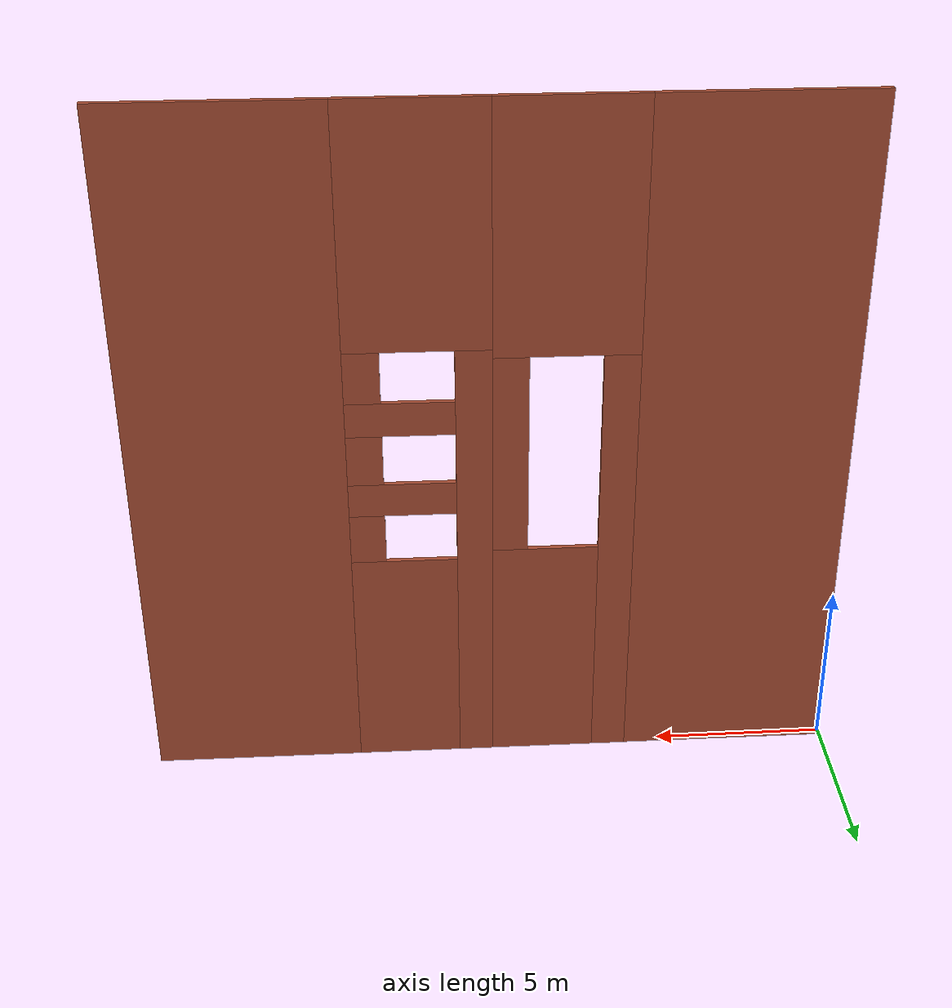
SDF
<?xml version='1.0'?>
<sdf version='1.6'>
    <model name='e_wall'>

        <static>1</static>
        <allow_auto_disable>1</allow_auto_disable>

        <include>
            <uri>model://e_wall_1</uri>
            <name>e_wall_1_1</name>
            <pose>0 0 10 0 1.57 0</pose>
        </include>

        <include>
            <uri>model://e_wall_2</uri>
            <name>e_wall_2</name>
            <pose>6 0 10 0 1.57 0</pose>
        </include>

        <include>
            <uri>model://e_wall_3</uri>
            <name>e_wall_3</name>
            <pose>10 0 10 0 1.57 0</pose>
        </include>

        <include>
            <uri>model://e_wall_1</uri>
            <name>e_wall_1_2</name>
            <pose>14 0 10 0 1.57 0</pose>
        </include>

    </model>
</sdf>

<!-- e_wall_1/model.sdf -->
<sdf version='1.7'>
  <model name='e_wall_1'>
    <pose>10 0 0 0 -0 0</pose>
    <link name='Wall_6'>
      <collision name='Wall_6_Collision'>
        <geometry>
          <box>
            <size>20.15 0.15 6</size>
          </box>
        </geometry>
        <pose>0 0 3 0 -0 0</pose>
      </collision>
      <visual name='Wall_6_Visual'>
        <pose>0 0 3 0 -0 0</pose>
        <geometry>
          <box>
            <size>20.15 0.15 6</size>
          </box>
        </geometry>
        <material>
          <script>
            <uri>model://e_wall_1/scripts</uri>
            <name>Bricks3_7</name>
          </script>
          <ambient>1 1 1 1</ambient>
        </material>
        <meta>
          <layer>0</layer>
        </meta>
      </visual>
      <pose>-0 0 0 0 -0 0</pose>
    </link>
    <static>1</static>
  </model>
</sdf>

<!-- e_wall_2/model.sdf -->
<sdf version='1.7'>
  <model name='e_wall_2'>
    <pose>10 0 0 0 -0 0</pose>
    <link name='Wall_8'>
      <pose>-0 0 0 0 -0 0</pose>
      <visual name='Wall_8_Visual_0'>
        <pose>-6.5375 0 2 0 -0 0</pose>
        <geometry>
          <box>
            <size>7.075 0.15 4</size>
          </box>
        </geometry>
        <material>
          <script>
            <uri>model://e_wall_2/scripts</uri>
            <name>Bricks3_8</name>
          </script>
          <ambient>1 1 1 1</ambient>
        </material>
        <meta>
          <layer>0</layer>
        </meta>
      </visual>
      <collision name='Wall_8_Collision_0'>
        <geometry>
          <box>
            <size>7.075 0.15 4</size>
          </box>
        </geometry>
        <pose>-6.5375 0 2 0 -0 0</pose>
      </collision>
      <visual name='Wall_8_Visual_1'>
        <pose>3.5375 0 0.5 0 -0 0</pose>
        <geometry>
          <box>
            <size>13.075 0.15 1</size>
          </box>
        </geometry>
        <material>
          <script>
            <uri>model://e_wall_2/scripts</uri>
            <name>Bricks3_9</name>
          </script>
          <ambient>1 1 1 1</ambient>
        </material>
        <meta>
          <layer>0</layer>
        </meta>
      </visual>
      <collision name='Wall_8_Collision_1'>
        <geometry>
          <box>
            <size>13.075 0.15 1</size>
          </box>
        </geometry>
        <pose>3.5375 0 0.5 0 -0 0</pose>
      </collision>
      <visual name='Wall_8_Visual_2'>
        <pose>6.5375 0 2.5 0 -0 0</pose>
        <geometry>
          <box>
            <size>7.075 0.15 3</size>
          </box>
        </geometry>
        <material>
          <script>
            <uri>model://e_wall_2/scripts</uri>
            <name>Bricks3_10</name>
          </script>
          <ambient>1 1 1 1</ambient>
        </material>
        <meta>
          <layer>0</layer>
        </meta>
      </visual>
      <collision name='Wall_8_Collision_2'>
        <geometry>
          <box>
            <size>7.075 0.15 3</size>
          </box>
        </geometry>
        <pose>6.5375 0 2.5 0 -0 0</pose>
      </collision>
      <visual name='Wall_8_Visual_3'>
        <pose>0 0 3.5 0 -0 0</pose>
        <geometry>
          <box>
            <size>6 0.15 1</size>
          </box>
        </geometry>
        <material>
          <script>
            <uri>model://e_wall_2/scripts</uri>
            <name>Bricks3_11</name>
          </script>
          <ambient>1 1 1 1</ambient>
        </material>
        <meta>
          <layer>0</layer>
        </meta>
      </visual>
      <collision name='Wall_8_Collision_3'>
        <geometry>
          <box>
            <size>6 0.15 1</size>
          </box>
        </geometry>
        <pose>0 0 3.5 0 -0 0</pose>
      </collision>
    </link>
    <static>1</static>
  </model>
</sdf>

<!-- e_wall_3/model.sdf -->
<sdf version='1.7'>
  <model name='e_wall_3'>
    <pose>10 0 0 0 -0 0</pose>
    <link name='Wall_10'>
      <pose>-0 0 0 0 -0 0</pose>
      <visual name='Wall_10_Visual_0'>
        <pose>-6.6625 0 2 0 -0 0</pose>
        <geometry>
          <box>
            <size>6.825 0.15 4</size>
          </box>
        </geometry>
        <material>
          <script>
            <uri>model://e_wall_3/scripts</uri>
            <name>Bricks3_12</name>
          </script>
          <ambient>1 1 1 1</ambient>
        </material>
        <meta>
          <layer>0</layer>
        </meta>
      </visual>
      <collision name='Wall_10_Collision_0'>
        <geometry>
          <box>
            <size>6.825 0.15 4</size>
          </box>
        </geometry>
        <pose>-6.6625 0 2 0 -0 0</pose>
      </collision>
      <visual name='Wall_10_Visual_1'>
        <pose>3.4125 0 0.5 0 -0 0</pose>
        <geometry>
          <box>
            <size>13.325 0.15 1</size>
          </box>
        </geometry>
        <material>
          <script>
            <uri>model://e_wall_3/scripts</uri>
            <name>Bricks3_13</name>
          </script>
          <ambient>1 1 1 1</ambient>
        </material>
        <meta>
          <layer>0</layer>
        </meta>
      </visual>
      <collision name='Wall_10_Collision_1'>
        <geometry>
          <box>
            <size>13.325 0.15 1</size>
          </box>
        </geometry>
        <pose>3.4125 0 0.5 0 -0 0</pose>
      </collision>
      <visual name='Wall_10_Visual_2'>
        <pose>-1.25 0 2.5 0 -0 0</pose>
        <geometry>
          <box>
            <size>1 0.15 3</size>
          </box>
        </geometry>
        <material>
          <script>
            <uri>model://e_wall_3/scripts</uri>
            <name>Bricks3_14</name>
          </script>
          <ambient>1 1 1 1</ambient>
        </material>
        <meta>
          <layer>0</layer>
        </meta>
      </visual>
      <collision name='Wall_10_Collision_2'>
        <geometry>
          <box>
            <size>1 0.15 3</size>
          </box>
        </geometry>
        <pose>-1.25 0 2.5 0 -0 0</pose>
      </collision>
      <visual name='Wall_10_Visual_3'>
        <pose>1.25 0 2.5 0 -0 0</pose>
        <geometry>
          <box>
            <size>1 0.15 3</size>
          </box>
        </geometry>
        <material>
          <script>
            <uri>model://e_wall_3/scripts</uri>
            <name>Bricks3_14</name>
          </script>
          <ambient>1 1 1 1</ambient>
        </material>
        <meta>
          <layer>0</layer>
        </meta>
      </visual>
      <collision name='Wall_10_Collision_3'>
        <geometry>
          <box>
            <size>1 0.15 3</size>
          </box>
        </geometry>
        <pose>1.25 0 2.5 0 -0 0</pose>
      </collision>
      <visual name='Wall_10_Visual_4'>
        <pose>6.6625 0 2.5 0 -0 0</pose>
        <geometry>
          <box>
            <size>6.825 0.15 3</size>
          </box>
        </geometry>
        <material>
          <script>
            <uri>model://e_wall_3/scripts</uri>
            <name>Bricks3_15</name>
          </script>
          <ambient>1 1 1 1</ambient>
        </material>
        <meta>
          <layer>0</layer>
        </meta>
      </visual>
      <collision name='Wall_10_Collision_4'>
        <geometry>
          <box>
            <size>6.825 0.15 3</size>
          </box>
        </geometry>
        <pose>6.6625 0 2.5 0 -0 0</pose>
      </collision>
      <visual name='Wall_10_Visual_5'>
        <pose>-2.5 0 3.5 0 -0 0</pose>
        <geometry>
          <box>
            <size>1.5 0.15 1</size>
          </box>
        </geometry>
        <material>
          <script>
            <uri>model://e_wall_3/scripts</uri>
            <name>Bricks3_16</name>
          </script>
          <ambient>1 1 1 1</ambient>
        </material>
        <meta>
          <layer>0</layer>
        </meta>
      </visual>
      <collision name='Wall_10_Collision_5'>
        <geometry>
          <box>
            <size>1.5 0.15 1</size>
          </box>
        </geometry>
        <pose>-2.5 0 3.5 0 -0 0</pose>
      </collision>
      <visual name='Wall_10_Visual_6'>
        <pose>0 0 3.5 0 -0 0</pose>
        <geometry>
          <box>
            <size>1.5 0.15 1</size>
          </box>
        </geometry>
        <material>
          <script>
            <uri>model://e_wall_3/scripts</uri>
            <name>Bricks3_16</name>
          </script>
          <ambient>1 1 1 1</ambient>
        </material>
        <meta>
          <layer>0</layer>
        </meta>
      </visual>
      <collision name='Wall_10_Collision_6'>
        <geometry>
          <box>
            <size>1.5 0.15 1</size>
          </box>
        </geometry>
        <pose>0 0 3.5 0 -0 0</pose>
      </collision>
      <visual name='Wall_10_Visual_7'>
        <pose>2.5 0 3.5 0 -0 0</pose>
        <geometry>
          <box>
            <size>1.5 0.15 1</size>
          </box>
        </geometry>
        <material>
          <script>
            <uri>model://e_wall_3/scripts</uri>
            <name>Bricks3_16</name>
          </script>
          <ambient>1 1 1 1</ambient>
        </material>
        <meta>
          <layer>0</layer>
        </meta>
      </visual>
      <collision name='Wall_10_Collision_7'>
        <geometry>
          <box>
            <size>1.5 0.15 1</size>
          </box>
        </geometry>
        <pose>2.5 0 3.5 0 -0 0</pose>
      </collision>
    </link>
    <static>1</static>
  </model>
</sdf>
